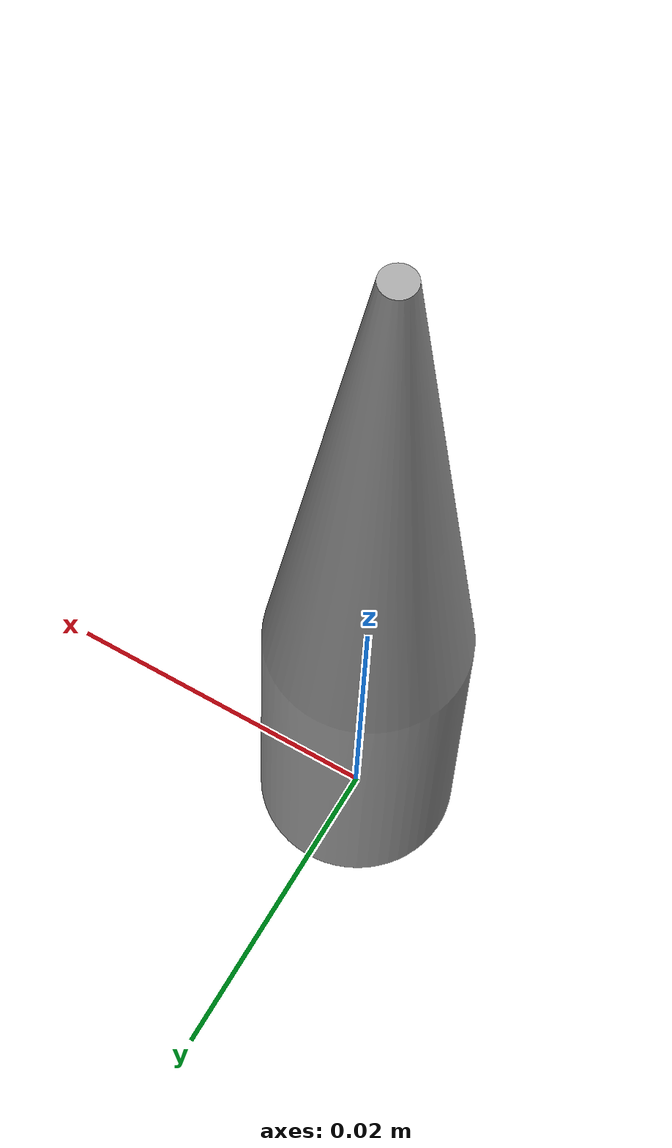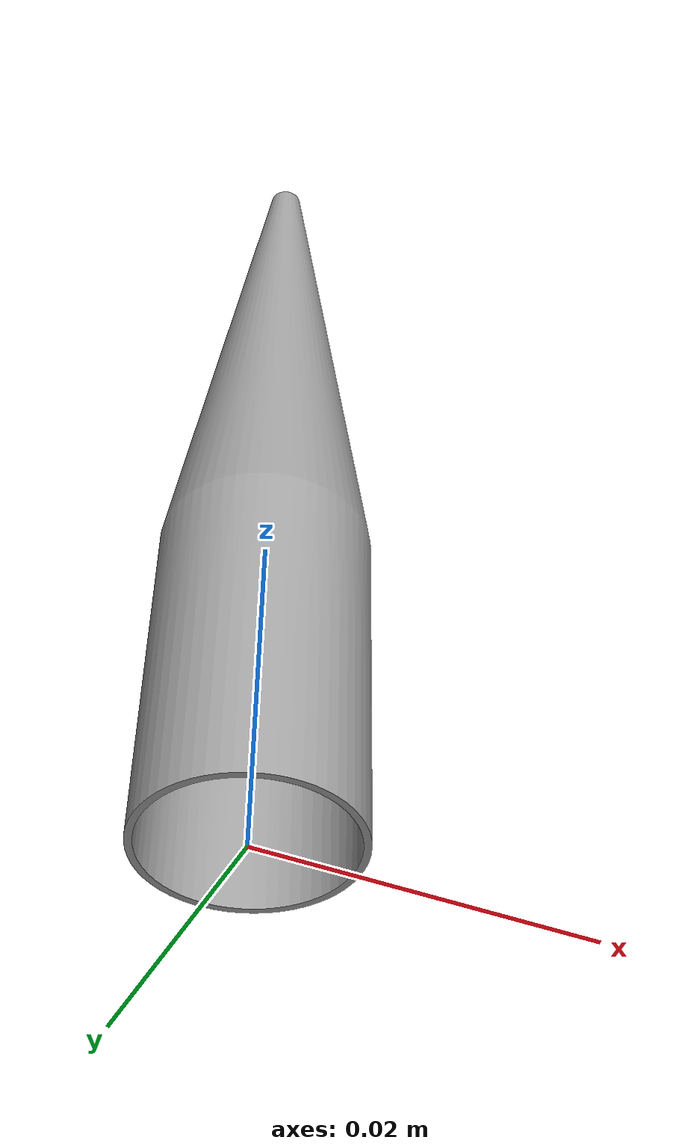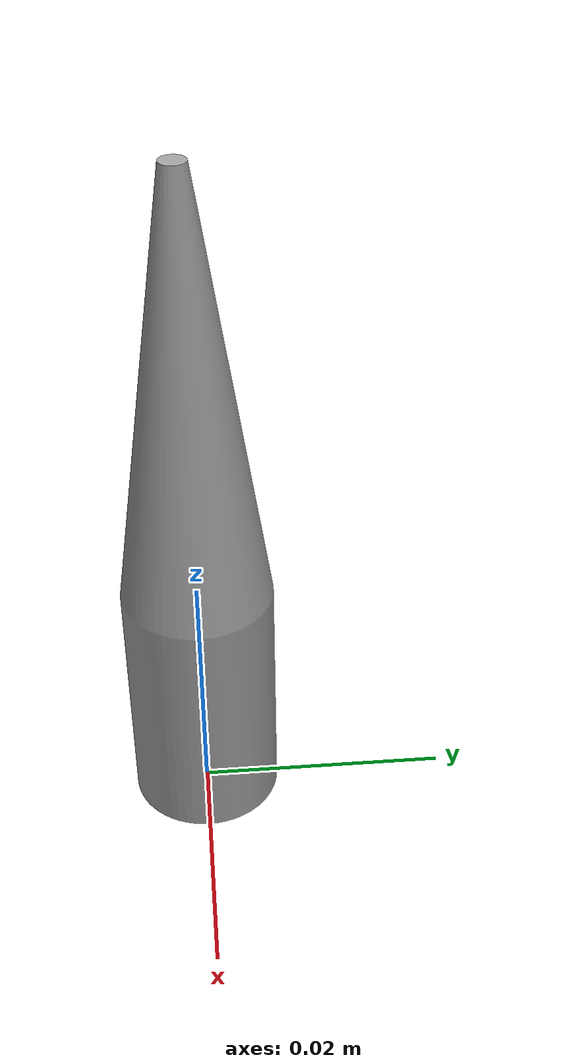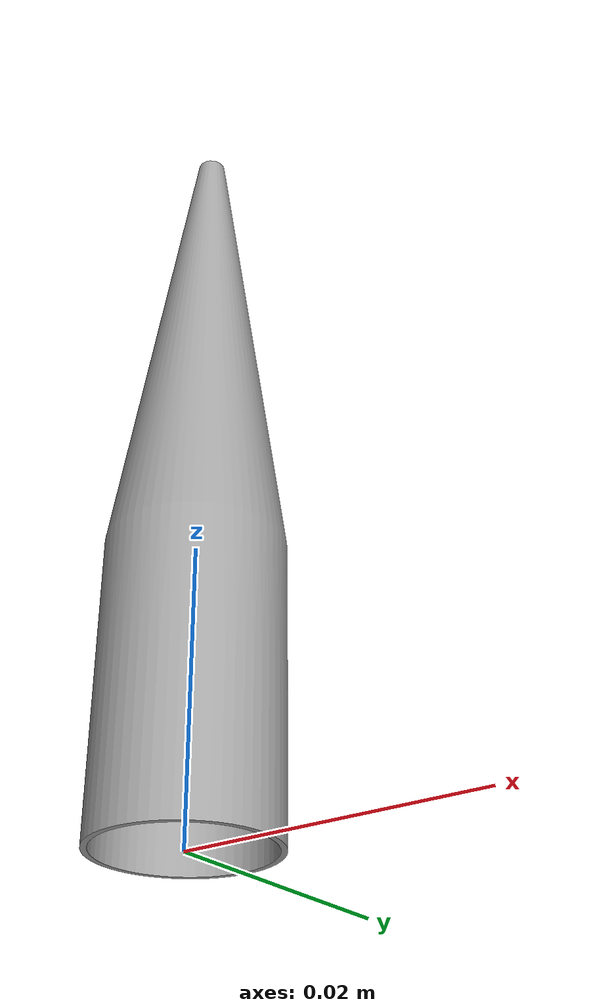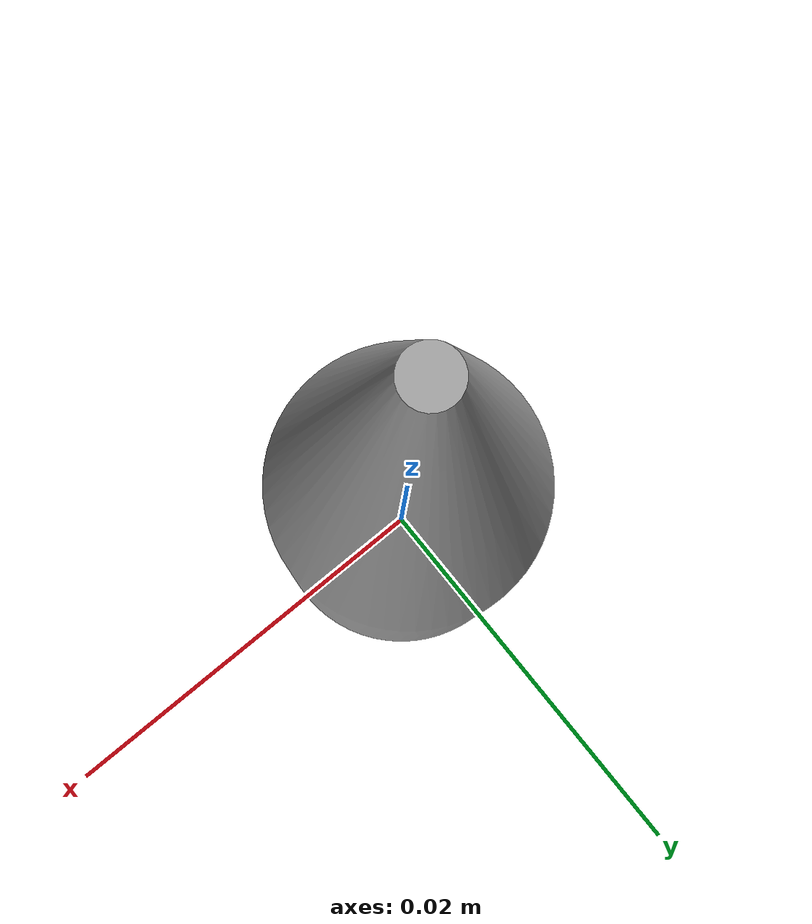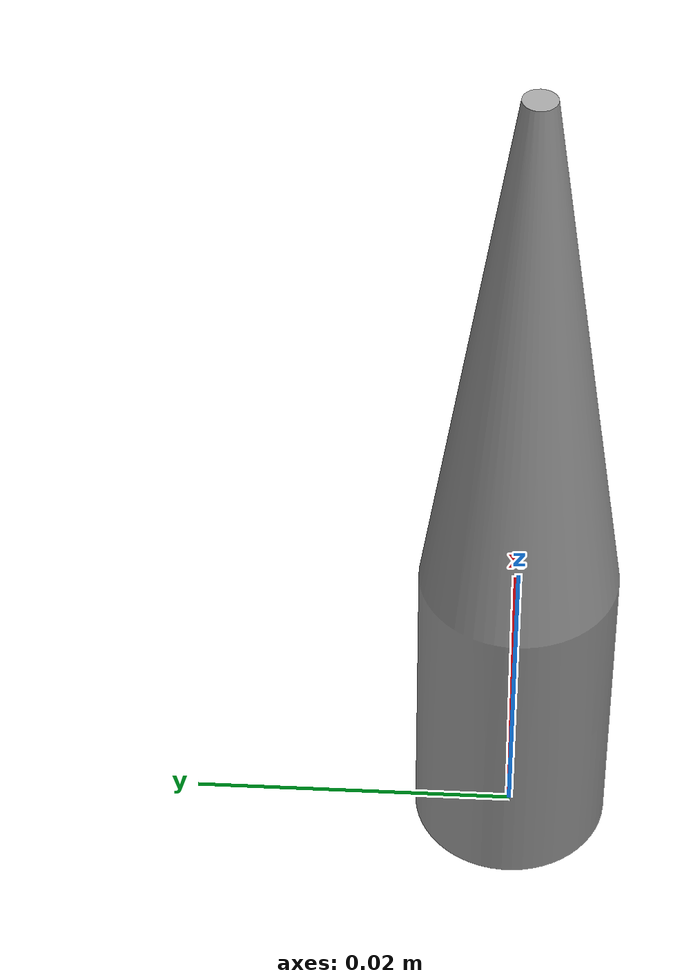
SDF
<?xml version="1.0" ?>
<sdf version="1.5">
  <model name="block_model">
    <link name="block_link">
      <inertial>
        <mass>0.1</mass>
        <inertia>
          <ixx>0.00058</ixx>
          <ixy>0</ixy>
          <ixz>0</ixz>
          <iyy>0.00058</iyy>
          <iyz>0</iyz>
          <izz>0.00019</izz>
        </inertia>
      </inertial>
      <collision name="block_collision">
        <geometry>
          <mesh>
            <uri>model://block/meshes/block_collision.dae</uri>
          </mesh>
        </geometry>
        <surface>
          <friction>
            <ode>
              <mu>1.0</mu>
              <mu2>1.0</mu2>
            </ode>
          </friction>
          <contact>
            <ode>
              <kp>10000000.0</kp>
              <kd>1.0</kd>
              <min_depth>0.001</min_depth>
              <max_vel>0.1</max_vel>
            </ode>
          </contact>
        </surface>
      </collision>
      <visual name="block_visual">
        <geometry>
          <mesh>
            <uri>model://block/meshes/block_visual.dae</uri>
          </mesh>
        </geometry>
      </visual>
    </link>
  </model>
</sdf>
